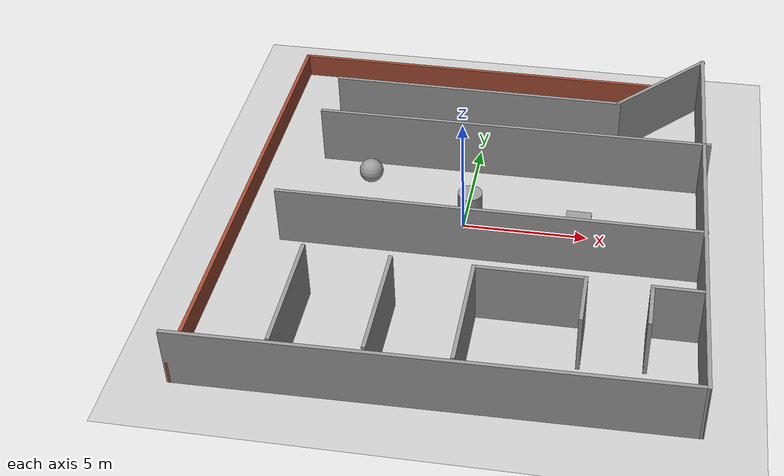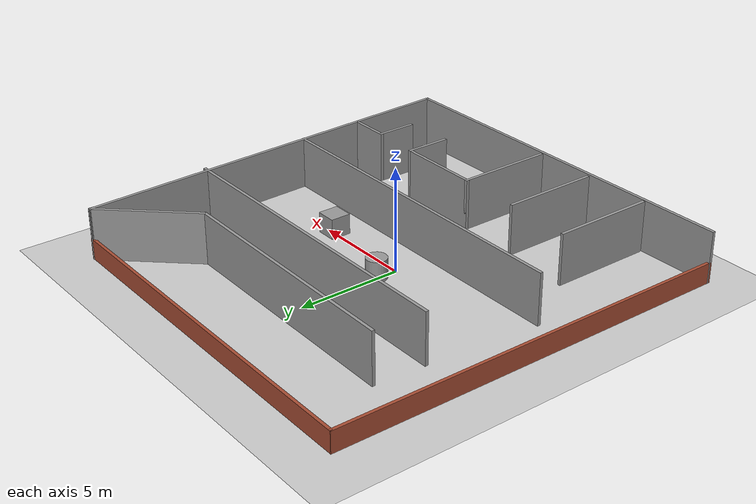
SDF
<sdf version="1.6">
 <world name="default">
  <light name="sun" type="directional">
   <pose>0 0 10 0 -0 0</pose>
   <diffuse>0.8 0.8 0.8 1</diffuse>
   <specular>0.2 0.2 0.2 1</specular>
   <attenuation>
    <range>1000</range>
    <constant>0.9</constant>
    <linear>0.01</linear>
    <quadratic>0.001</quadratic>
   </attenuation>
   <direction>-0.5 0.1 -0.9</direction>
  </light>
  <model name="ground_plane">
   <static>1</static>
   <link name="link">
    <collision name="collision">
     <geometry><plane><normal>0 0 1</normal><size>100 100</size></plane></geometry>
     <surface>
      <contact><collide_bitmask>65535</collide_bitmask></contact>
      <friction><ode><mu>100</mu><mu2>50</mu2></ode></friction>
     </surface>
    </collision>
    <visual name="visual">
     <cast_shadows>0</cast_shadows>
     <geometry><plane><normal>0 0 1</normal><size>100 100</size></plane></geometry>
     <material>
      <script><uri>file://media/materials/scripts/gazebo.material</uri><name>Gazebo/Grey</name></script>
     </material>
    </visual>
   </link>
  </model>
  <gravity>0 0 -9.8</gravity>
  <magnetic_field>6e-06 2.3e-05 -4.2e-05</magnetic_field>
  <atmosphere type="adiabatic"/>
  <physics name="default_physics" default="0" type="ode">
   <max_step_size>0.001</max_step_size>
   <real_time_factor>1</real_time_factor>
   <real_time_update_rate>1000</real_time_update_rate>
  </physics>
  <scene><ambient>0.4 0.4 0.4 1</ambient><background>0.7 0.7 0.7 1</background><shadows>1</shadows></scene>
  <spherical_coordinates>
   <surface_model>EARTH_WGS84</surface_model>
   <latitude_deg>0</latitude_deg>
   <longitude_deg>0</longitude_deg>
   <elevation>0</elevation>
   <heading_deg>0</heading_deg>
  </spherical_coordinates>
  <model name="exp_1">
   <pose>0.39351 -0.070495 0 0 -0 0</pose>
   <link name="Wall_0">
    <collision name="Wall_0_Collision">
     <geometry><box><size>20.0101 0.15 1</size></box></geometry>
     <pose>0 0 0.5 0 -0 0</pose>
    </collision>
    <visual name="Wall_0_Visual">
     <pose>0 0 0.5 0 -0 0</pose>
     <geometry><box><size>20.0101 0.15 1</size></box></geometry>
     <material>
      <script><uri>file://media/materials/scripts/gazebo.material</uri><name>Gazebo/Bricks</name></script>
      <ambient>0.760784 0.662745 0.627451 1</ambient>
     </material>
     <meta><layer>0</layer></meta>
    </visual>
    <pose>-9.32315 0.000138 0 0 -0 -1.57788</pose>
   </link>
   <link name="Wall_10">
    <collision name="Wall_10_Collision">
     <geometry><box><size>16.25 0.15 2.5</size></box></geometry>
     <pose>0 0 1.25 0 -0 0</pose>
    </collision>
    <visual name="Wall_10_Visual">
     <pose>0 0 1.25 0 -0 0</pose>
     <geometry><box><size>16.25 0.15 2.5</size></box></geometry>
     <material>
      <script><uri>file://media/materials/scripts/gazebo.material</uri><name>Gazebo/Grey</name></script>
      <ambient>1 1 1 1</ambient>
     </material>
     <meta><layer>0</layer></meta>
    </visual>
    <pose>1.11489 3.72363 0 0 -0 0</pose>
   </link>
   <link name="Wall_12">
    <collision name="Wall_12_Collision">
     <geometry><box><size>16.75 0.15 2.5</size></box></geometry>
     <pose>0 0 1.25 0 -0 0</pose>
    </collision>
    <visual name="Wall_12_Visual">
     <pose>0 0 1.25 0 -0 0</pose>
     <geometry><box><size>16.75 0.15 2.5</size></box></geometry>
     <material>
      <script><uri>file://media/materials/scripts/gazebo.material</uri><name>Gazebo/Grey</name></script>
      <ambient>1 1 1 1</ambient>
     </material>
     <meta><layer>0</layer></meta>
    </visual>
    <pose>0.844859 -1.78261 0 0 -0 0</pose>
   </link>
   <link name="Wall_14">
    <collision name="Wall_14_Collision">
     <geometry><box><size>5 0.15 2.5</size></box></geometry>
     <pose>0 0 1.25 0 -0 0</pose>
    </collision>
    <visual name="Wall_14_Visual">
     <pose>0 0 1.25 0 -0 0</pose>
     <geometry><box><size>5 0.15 2.5</size></box></geometry>
     <material>
      <script><uri>file://media/materials/scripts/gazebo.material</uri><name>Gazebo/Grey</name></script>
      <ambient>1 1 1 1</ambient>
     </material>
     <meta><layer>0</layer></meta>
    </visual>
    <pose>-5.61973 -7.24989 0 0 -0 1.5708</pose>
   </link>
   <link name="Wall_16">
    <collision name="Wall_16_Collision">
     <geometry><box><size>4.75 0.15 2.5</size></box></geometry>
     <pose>0 0 1.25 0 -0 0</pose>
    </collision>
    <visual name="Wall_16_Visual">
     <pose>0 0 1.25 0 -0 0</pose>
     <geometry><box><size>4.75 0.15 2.5</size></box></geometry>
     <material>
      <script><uri>file://media/materials/scripts/gazebo.material</uri><name>Gazebo/Grey</name></script>
      <ambient>1 1 1 1</ambient>
     </material>
     <meta><layer>0</layer></meta>
    </visual>
    <pose>-2.28539 -7.264 0 0 -0 -1.5708</pose>
   </link>
   <link name="Wall_18">
    <collision name="Wall_18_Collision">
     <geometry><box><size>4.75 0.15 2.5</size></box></geometry>
     <pose>0 0 1.25 0 -0 0</pose>
    </collision>
    <visual name="Wall_18_Visual">
     <pose>0 0 1.25 0 -0 0</pose>
     <geometry><box><size>4.75 0.15 2.5</size></box></geometry>
     <material>
      <script><uri>file://media/materials/scripts/gazebo.material</uri><name>Gazebo/Grey</name></script>
      <ambient>1 1 1 1</ambient>
     </material>
     <meta><layer>0</layer></meta>
    </visual>
    <pose>0.80422 -7.29459 0 0 -0 -1.5708</pose>
   </link>
   <link name="Wall_20">
    <collision name="Wall_20_Collision">
     <geometry><box><size>4.25 0.15 2.5</size></box></geometry>
     <pose>0 0 1.25 0 -0 0</pose>
    </collision>
    <visual name="Wall_20_Visual">
     <pose>0 0 1.25 0 -0 0</pose>
     <geometry><box><size>4.25 0.15 2.5</size></box></geometry>
     <material>
      <script><uri>file://media/materials/scripts/gazebo.material</uri><name>Gazebo/Grey</name></script>
      <ambient>1 1 1 1</ambient>
     </material>
     <meta><layer>0</layer></meta>
    </visual>
    <pose>2.85422 -4.99459 0 0 -0 0</pose>
   </link>
   <link name="Wall_21">
    <collision name="Wall_21_Collision">
     <geometry><box><size>2.25 0.15 2.5</size></box></geometry>
     <pose>0 0 1.25 0 -0 0</pose>
    </collision>
    <visual name="Wall_21_Visual">
     <pose>0 0 1.25 0 -0 0</pose>
     <geometry><box><size>2.25 0.15 2.5</size></box></geometry>
     <material>
      <script><uri>file://media/materials/scripts/gazebo.material</uri><name>Gazebo/Grey</name></script>
      <ambient>1 1 1 1</ambient>
     </material>
     <meta><layer>0</layer></meta>
    </visual>
    <pose>4.90422 -6.04459 0 0 -0 -1.5708</pose>
   </link>
   <link name="Wall_23">
    <collision name="Wall_23_Collision">
     <geometry><box><size>2 0.15 2.5</size></box></geometry>
     <pose>0 0 1.25 0 -0 0</pose>
    </collision>
    <visual name="Wall_23_Visual">
     <pose>0 0 1.25 0 -0 0</pose>
     <geometry><box><size>2 0.15 2.5</size></box></geometry>
     <material>
      <script><uri>file://media/materials/scripts/gazebo.material</uri><name>Gazebo/Grey</name></script>
      <ambient>1 1 1 1</ambient>
     </material>
     <meta><layer>0</layer></meta>
    </visual>
    <pose>8.23035 -5.08636 0 0 -0 3.14159</pose>
   </link>
   <link name="Wall_24">
    <collision name="Wall_24_Collision">
     <geometry><box><size>2 0.15 2.5</size></box></geometry>
     <pose>0 0 1.25 0 -0 0</pose>
    </collision>
    <visual name="Wall_24_Visual">
     <pose>0 0 1.25 0 -0 0</pose>
     <geometry><box><size>2 0.15 2.5</size></box></geometry>
     <material>
      <script><uri>file://media/materials/scripts/gazebo.material</uri><name>Gazebo/Grey</name></script>
      <ambient>1 1 1 1</ambient>
     </material>
     <meta><layer>0</layer></meta>
    </visual>
    <pose>7.30535 -6.01136 0 0 -0 -1.5708</pose>
   </link>
   <link name="Wall_3">
    <collision name="Wall_3_Collision">
     <geometry><box><size>18.1503 0.15 1</size></box></geometry>
     <pose>0 0 0.5 0 -0 0</pose>
    </collision>
    <visual name="Wall_3_Visual">
     <pose>0 0 0.5 0 -0 0</pose>
     <geometry><box><size>18.1503 0.15 1</size></box></geometry>
     <material>
      <script><uri>file://media/materials/scripts/gazebo.material</uri><name>Gazebo/Bricks</name></script>
      <ambient>0.760784 0.662745 0.627451 1</ambient>
     </material>
     <meta><layer>0</layer></meta>
    </visual>
    <pose>-0.217618 9.87701 0 0 -0 -0.005863</pose>
   </link>
   <link name="Wall_4">
    <collision name="Wall_4_Collision">
     <geometry><box><size>19.6762 0.15 2.5</size></box></geometry>
     <pose>0 0 1.25 0 -0 0</pose>
    </collision>
    <visual name="Wall_4_Visual">
     <pose>0 0 1.25 0 -0 0</pose>
     <geometry><box><size>19.6762 0.15 2.5</size></box></geometry>
     <material>
      <script><uri>file://media/materials/scripts/gazebo.material</uri><name>Gazebo/Grey</name></script>
      <ambient>1 1 1 1</ambient>
     </material>
     <meta><layer>0</layer></meta>
    </visual>
    <pose>9.06961 0.066447 0 0 -0 -1.53777</pose>
   </link>
   <link name="Wall_5">
    <collision name="Wall_5_Collision">
     <geometry><box><size>18.9019 0.15 2.5</size></box></geometry>
     <pose>0 0 1.25 0 -0 0</pose>
    </collision>
    <visual name="Wall_5_Visual">
     <pose>0 0 1.25 0 -0 0</pose>
     <geometry><box><size>18.9019 0.15 2.5</size></box></geometry>
     <material>
      <script><uri>file://media/materials/scripts/gazebo.material</uri><name>Gazebo/Grey</name></script>
      <ambient>1 1 1 1</ambient>
     </material>
     <meta><layer>0</layer></meta>
    </visual>
    <pose>-0.018333 -9.81043 0 0 -0 -3.12889</pose>
   </link>
   <link name="Wall_7">
    <collision name="Wall_7_Collision">
     <geometry><box><size>5.18572 0.15 2.5</size></box></geometry>
     <pose>0 0 1.25 0 -0 0</pose>
    </collision>
    <visual name="Wall_7_Visual">
     <pose>0 0 1.25 0 -0 0</pose>
     <geometry><box><size>5.18572 0.15 2.5</size></box></geometry>
     <material>
      <script><uri>file://media/materials/scripts/gazebo.material</uri><name>Gazebo/Grey</name></script>
      <ambient>1 1 1 1</ambient>
     </material>
     <meta><layer>0</layer></meta>
    </visual>
    <pose>7.03695 7.97637 0 0 -0 -2.31754</pose>
   </link>
   <link name="Wall_8">
    <collision name="Wall_8_Collision">
     <geometry><box><size>12.25 0.15 2.5</size></box></geometry>
     <pose>0 0 1.25 0 -0 0</pose>
    </collision>
    <visual name="Wall_8_Visual">
     <pose>0 0 1.25 0 -0 0</pose>
     <geometry><box><size>12.25 0.15 2.5</size></box></geometry>
     <material>
      <script><uri>file://media/materials/scripts/gazebo.material</uri><name>Gazebo/Grey</name></script>
      <ambient>1 1 1 1</ambient>
     </material>
     <meta><layer>0</layer></meta>
    </visual>
    <pose>-0.72331 6.14608 0 0 -0 3.13287</pose>
   </link>
   <static>1</static>
  </model>
  <model name="unit_cylinder">
   <pose>0.131964 0.93974 0.499992 -3e-06 4e-06 0</pose>
   <link name="link">
    <inertial>
     <mass>1</mass>
     <inertia><ixx>0.145833</ixx><ixy>0</ixy><ixz>0</ixz><iyy>0.145833</iyy><iyz>0</iyz><izz>0.125</izz></inertia>
    </inertial>
    <collision name="collision">
     <geometry><cylinder><radius>0.5</radius><length>1</length></cylinder></geometry>
    </collision>
    <visual name="visual">
     <geometry><cylinder><radius>0.5</radius><length>1</length></cylinder></geometry>
     <material>
      <script><name>Gazebo/Grey</name><uri>file://media/materials/scripts/gazebo.material</uri></script>
     </material>
    </visual>
   </link>
  </model>
  <model name="unit_box">
   <pose>4.62507 -0.074647 0.499995 0 1e-05 0</pose>
   <link name="link">
    <inertial>
     <mass>1</mass>
     <inertia>
      <ixx>0.166667</ixx>
      <ixy>0</ixy>
      <ixz>0</ixz>
      <iyy>0.166667</iyy>
      <iyz>0</iyz>
      <izz>0.166667</izz>
     </inertia>
    </inertial>
    <collision name="collision"><geometry><box><size>1 1 1</size></box></geometry></collision>
    <visual name="visual">
     <geometry><box><size>1 1 1</size></box></geometry>
     <material>
      <script><name>Gazebo/Grey</name><uri>file://media/materials/scripts/gazebo.material</uri></script>
     </material>
    </visual>
   </link>
  </model>
  <model name="unit_sphere">
   <pose>-4.29244 2.42907 0.5 0 -0 0</pose>
   <link name="link">
    <inertial>
     <mass>1</mass>
     <inertia><ixx>0.1</ixx><ixy>0</ixy><ixz>0</ixz><iyy>0.1</iyy><iyz>0</iyz><izz>0.1</izz></inertia>
    </inertial>
    <collision name="collision"><geometry><sphere><radius>0.5</radius></sphere></geometry></collision>
    <visual name="visual">
     <geometry><sphere><radius>0.5</radius></sphere></geometry>
     <material>
      <script><name>Gazebo/Grey</name><uri>file://media/materials/scripts/gazebo.material</uri></script>
     </material>
    </visual>
   </link>
  </model>
 </world>
</sdf>
